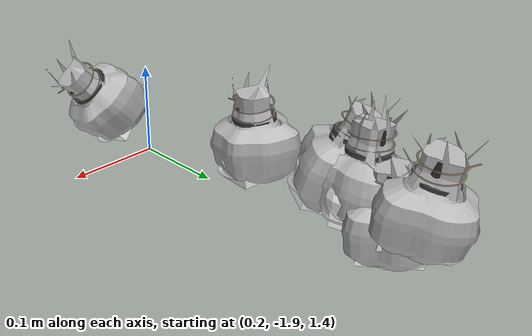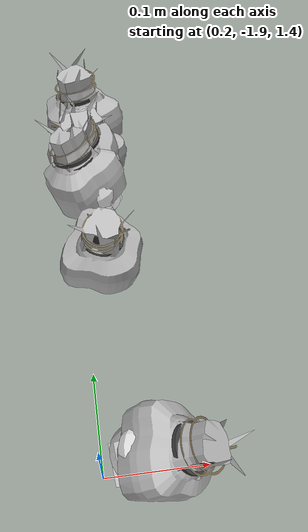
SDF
<sdf version="1.11">
 <world name="peach_orchard">
  <model name="ground">
   <static>true</static>
   <link name="link">
    <visual name="soil">
     <geometry><plane><normal>0 0 1</normal><size>32 22</size></plane></geometry>
     <material>
      <ambient>1 1 1 1</ambient>
      <diffuse>1 1 1 1</diffuse>
      <specular>0.1 0.1 0.1 1</specular>
      <pbr>
       <metal>
        <albedo_map>textures/soil_albedo.png</albedo_map>
        <normal_map type="tangent">textures/soil_normal.png</normal_map>
        <roughness>0.95</roughness>
        <metalness>0</metalness>
       </metal>
      </pbr>
     </material>
    </visual>
    <collision name="c_soil">
     <geometry><plane><normal>0 0 1</normal><size>32 22</size></plane></geometry>
    </collision>
   </link>
  </model>
  <model name="peach_tree_r2_t2_02">
   <pose>0.230029 -1.89716 1.45 0 0.746003 -0.172067</pose>
   <static>true</static>
   <link name="bag">
    <visual name="bag_mesh">
     <pose>0 0 0.0440666 0 0 -0</pose>
     <geometry>
      <mesh><uri>model://peach_sim/meshes/bagged_peach.glb</uri><scale>0.994791 1.13458 1.00151</scale></mesh>
     </geometry>
    </visual>
    <visual name="body">
     <pose>0 0 0.0260666 0 0 0</pose>
     <geometry><ellipsoid><radii>0.0373046 0.029499 0.0281519</radii></ellipsoid></geometry>
     <material>
      <ambient>1 1 1 1</ambient>
      <diffuse>1 1 1 1</diffuse>
      <specular>0.1 0.1 0.1 1</specular>
      <pbr>
       <metal>
        <albedo_map>textures/paper_bag_albedo.png</albedo_map>
        <normal_map type="tangent">textures/paper_bag_normal.png</normal_map>
        <roughness>0.72</roughness>
        <metalness>0</metalness>
       </metal>
      </pbr>
     </material>
    </visual>
    <visual name="bottom_fold">
     <pose>0 0 0.012 0 0 0.35</pose>
     <geometry><box><size>0.0578222 0.0339239 0.022</size></box></geometry>
     <material>
      <ambient>1 1 1 1</ambient>
      <diffuse>1 1 1 1</diffuse>
      <specular>0.1 0.1 0.1 1</specular>
      <pbr>
       <metal>
        <albedo_map>textures/paper_bag_albedo.png</albedo_map>
        <normal_map type="tangent">textures/paper_bag_normal.png</normal_map>
        <roughness>0.8</roughness>
        <metalness>0</metalness>
       </metal>
      </pbr>
     </material>
    </visual>
    <visual name="fruit">
     <pose>0 0 0.0180653 0 0 0</pose>
     <geometry><sphere><radius>0.025028</radius></sphere></geometry>
     <material>
      <ambient>1 1 1 1</ambient>
      <diffuse>1 1 1 1</diffuse>
      <specular>0.1 0.1 0.1 1</specular>
      <pbr>
       <metal>
        <albedo_map>textures/fruit_skin_albedo.png</albedo_map>
        <normal_map type="tangent">textures/fruit_skin_normal.png</normal_map>
        <roughness>0.55</roughness>
        <metalness>0</metalness>
       </metal>
      </pbr>
     </material>
    </visual>
    <visual name="neck">
     <pose>0 0 0.0611332 0 0 0</pose>
     <geometry><cylinder><radius>0.013</radius><length>0.018</length></cylinder></geometry>
     <material>
      <ambient>1 1 1 1</ambient>
      <diffuse>1 1 1 1</diffuse>
      <specular>0.1 0.1 0.1 1</specular>
      <pbr>
       <metal>
        <albedo_map>textures/paper_bag_albedo.png</albedo_map>
        <normal_map type="tangent">textures/paper_bag_normal.png</normal_map>
        <roughness>0.75</roughness>
        <metalness>0</metalness>
       </metal>
      </pbr>
     </material>
    </visual>
    <visual name="gather">
     <pose>0 0 0.0421332 0 0 0</pose>
     <geometry><cylinder><radius>0.019</radius><length>0.02</length></cylinder></geometry>
     <material>
      <ambient>1 1 1 1</ambient>
      <diffuse>1 1 1 1</diffuse>
      <specular>0.1 0.1 0.1 1</specular>
      <pbr>
       <metal>
        <albedo_map>textures/paper_bag_albedo.png</albedo_map>
        <normal_map type="tangent">textures/paper_bag_normal.png</normal_map>
        <roughness>0.8</roughness>
        <metalness>0</metalness>
       </metal>
      </pbr>
     </material>
    </visual>
    <visual name="inner_paper">
     <pose>0 0 0.0661332 0 0 0</pose>
     <geometry><cylinder><radius>0.01</radius><length>0.008</length></cylinder></geometry>
     <material>
      <ambient>0.180392 0.14902 0.133333 1</ambient>
      <diffuse>0.180392 0.14902 0.133333 1</diffuse>
      <specular>0.1 0.1 0.1 1</specular>
     </material>
    </visual>
    <visual name="wire_0">
     <pose>0 0 0.0561332 0 0 0</pose>
     <geometry><cylinder><radius>0.0205</radius><length>0.0035</length></cylinder></geometry>
     <material>
      <ambient>0.25 0.25 0.25 1</ambient>
      <diffuse>0.25 0.25 0.25 1</diffuse>
      <specular>0.1 0.1 0.1 1</specular>
     </material>
    </visual>
    <visual name="wire_1">
     <pose>0 0 0.0631332 0 0 0</pose>
     <geometry><cylinder><radius>0.0205</radius><length>0.0035</length></cylinder></geometry>
     <material>
      <ambient>0.25 0.25 0.25 1</ambient>
      <diffuse>0.25 0.25 0.25 1</diffuse>
      <specular>0.1 0.1 0.1 1</specular>
     </material>
    </visual>
    <visual name="wire_tail">
     <pose>0.01 0 0.0641332 0 0.521618 0</pose>
     <geometry><cylinder><radius>0.0012</radius><length>0.026</length></cylinder></geometry>
     <material>
      <ambient>0.25 0.25 0.25 1</ambient>
      <diffuse>0.25 0.25 0.25 1</diffuse>
      <specular>0.1 0.1 0.1 1</specular>
     </material>
    </visual>
    <collision name="c_body">
     <pose>0 0 0.0260666 0 0 0</pose>
     <geometry><cylinder><radius>0.0373046</radius><length>0.0521332</length></cylinder></geometry>
    </collision>
   </link>
  </model>
  <model name="peach_tree_r2_t2_03">
   <pose>0.22 -1.7069 1.45 0 0.0652033 -0.461816</pose>
   <static>true</static>
   <link name="bag">
    <visual name="bag_mesh">
     <pose>0 0 0.0422345 0 0 -0</pose>
     <geometry>
      <mesh><uri>model://peach_sim/meshes/bagged_peach.glb</uri><scale>0.979474 1.15275 0.959875</scale></mesh>
     </geometry>
    </visual>
    <visual name="body">
     <pose>0 0 0.0242345 0 0 0</pose>
     <geometry><ellipsoid><radii>0.0367303 0.0299714 0.0261732</radii></ellipsoid></geometry>
     <material>
      <ambient>1 1 1 1</ambient>
      <diffuse>1 1 1 1</diffuse>
      <specular>0.1 0.1 0.1 1</specular>
      <pbr>
       <metal>
        <albedo_map>textures/paper_bag_albedo.png</albedo_map>
        <normal_map type="tangent">textures/paper_bag_normal.png</normal_map>
        <roughness>0.72</roughness>
        <metalness>0</metalness>
       </metal>
      </pbr>
     </material>
    </visual>
    <visual name="bottom_fold">
     <pose>0 0 0.012 0 0 0.35</pose>
     <geometry><box><size>0.0569319 0.0344671 0.022</size></box></geometry>
     <material>
      <ambient>1 1 1 1</ambient>
      <diffuse>1 1 1 1</diffuse>
      <specular>0.1 0.1 0.1 1</specular>
      <pbr>
       <metal>
        <albedo_map>textures/paper_bag_albedo.png</albedo_map>
        <normal_map type="tangent">textures/paper_bag_normal.png</normal_map>
        <roughness>0.8</roughness>
        <metalness>0</metalness>
       </metal>
      </pbr>
     </material>
    </visual>
    <visual name="fruit">
     <pose>0 0 0.0181683 0 0 0</pose>
     <geometry><sphere><radius>0.0251351</radius></sphere></geometry>
     <material>
      <ambient>1 1 1 1</ambient>
      <diffuse>1 1 1 1</diffuse>
      <specular>0.1 0.1 0.1 1</specular>
      <pbr>
       <metal>
        <albedo_map>textures/fruit_skin_albedo.png</albedo_map>
        <normal_map type="tangent">textures/fruit_skin_normal.png</normal_map>
        <roughness>0.55</roughness>
        <metalness>0</metalness>
       </metal>
      </pbr>
     </material>
    </visual>
    <visual name="neck">
     <pose>0 0 0.057469 0 0 0</pose>
     <geometry><cylinder><radius>0.013</radius><length>0.018</length></cylinder></geometry>
     <material>
      <ambient>1 1 1 1</ambient>
      <diffuse>1 1 1 1</diffuse>
      <specular>0.1 0.1 0.1 1</specular>
      <pbr>
       <metal>
        <albedo_map>textures/paper_bag_albedo.png</albedo_map>
        <normal_map type="tangent">textures/paper_bag_normal.png</normal_map>
        <roughness>0.75</roughness>
        <metalness>0</metalness>
       </metal>
      </pbr>
     </material>
    </visual>
    <visual name="gather">
     <pose>0 0 0.038469 0 0 0</pose>
     <geometry><cylinder><radius>0.019</radius><length>0.02</length></cylinder></geometry>
     <material>
      <ambient>1 1 1 1</ambient>
      <diffuse>1 1 1 1</diffuse>
      <specular>0.1 0.1 0.1 1</specular>
      <pbr>
       <metal>
        <albedo_map>textures/paper_bag_albedo.png</albedo_map>
        <normal_map type="tangent">textures/paper_bag_normal.png</normal_map>
        <roughness>0.8</roughness>
        <metalness>0</metalness>
       </metal>
      </pbr>
     </material>
    </visual>
    <visual name="inner_paper">
     <pose>0 0 0.062469 0 0 0</pose>
     <geometry><cylinder><radius>0.01</radius><length>0.008</length></cylinder></geometry>
     <material>
      <ambient>0.180392 0.14902 0.133333 1</ambient>
      <diffuse>0.180392 0.14902 0.133333 1</diffuse>
      <specular>0.1 0.1 0.1 1</specular>
     </material>
    </visual>
    <visual name="wire_0">
     <pose>0 0 0.052469 0 0 0</pose>
     <geometry><cylinder><radius>0.0205</radius><length>0.0035</length></cylinder></geometry>
     <material>
      <ambient>0.25 0.25 0.25 1</ambient>
      <diffuse>0.25 0.25 0.25 1</diffuse>
      <specular>0.1 0.1 0.1 1</specular>
     </material>
    </visual>
    <visual name="wire_1">
     <pose>0 0 0.059469 0 0 0</pose>
     <geometry><cylinder><radius>0.0205</radius><length>0.0035</length></cylinder></geometry>
     <material>
      <ambient>0.25 0.25 0.25 1</ambient>
      <diffuse>0.25 0.25 0.25 1</diffuse>
      <specular>0.1 0.1 0.1 1</specular>
     </material>
    </visual>
    <visual name="wire_tail">
     <pose>0.01 0 0.060469 0 0.521618 0</pose>
     <geometry><cylinder><radius>0.0012</radius><length>0.026</length></cylinder></geometry>
     <material>
      <ambient>0.25 0.25 0.25 1</ambient>
      <diffuse>0.25 0.25 0.25 1</diffuse>
      <specular>0.1 0.1 0.1 1</specular>
     </material>
    </visual>
    <collision name="c_body">
     <pose>0 0 0.0242345 0 0 0</pose>
     <geometry><cylinder><radius>0.0367303</radius><length>0.048469</length></cylinder></geometry>
    </collision>
   </link>
  </model>
  <model name="peach_tree_r2_t2_04">
   <pose>0.22 -1.58603 1.45 0 0.116318 3.05768</pose>
   <static>true</static>
   <link name="bag">
    <visual name="bag_mesh">
     <pose>0 0 0.0452178 0 0 0</pose>
     <geometry>
      <mesh><uri>model://peach_sim/meshes/bagged_peach.glb</uri><scale>0.984778 1.08162 1.02768</scale></mesh>
     </geometry>
    </visual>
    <visual name="body">
     <pose>0 0 0.0272178 0 0 0</pose>
     <geometry><ellipsoid><radii>0.0369292 0.0281221 0.0293952</radii></ellipsoid></geometry>
     <material>
      <ambient>1 1 1 1</ambient>
      <diffuse>1 1 1 1</diffuse>
      <specular>0.1 0.1 0.1 1</specular>
      <pbr>
       <metal>
        <albedo_map>textures/paper_bag_albedo.png</albedo_map>
        <normal_map type="tangent">textures/paper_bag_normal.png</normal_map>
        <roughness>0.72</roughness>
        <metalness>0</metalness>
       </metal>
      </pbr>
     </material>
    </visual>
    <visual name="bottom_fold">
     <pose>0 0 0.012 0 0 0.35</pose>
     <geometry><box><size>0.0572402 0.0323404 0.022</size></box></geometry>
     <material>
      <ambient>1 1 1 1</ambient>
      <diffuse>1 1 1 1</diffuse>
      <specular>0.1 0.1 0.1 1</specular>
      <pbr>
       <metal>
        <albedo_map>textures/paper_bag_albedo.png</albedo_map>
        <normal_map type="tangent">textures/paper_bag_normal.png</normal_map>
        <roughness>0.8</roughness>
        <metalness>0</metalness>
       </metal>
      </pbr>
     </material>
    </visual>
    <visual name="fruit">
     <pose>0 0 0.0196205 0 0 0</pose>
     <geometry><sphere><radius>0.0266454</radius></sphere></geometry>
     <material>
      <ambient>1 1 1 1</ambient>
      <diffuse>1 1 1 1</diffuse>
      <specular>0.1 0.1 0.1 1</specular>
      <pbr>
       <metal>
        <albedo_map>textures/fruit_skin_albedo.png</albedo_map>
        <normal_map type="tangent">textures/fruit_skin_normal.png</normal_map>
        <roughness>0.55</roughness>
        <metalness>0</metalness>
       </metal>
      </pbr>
     </material>
    </visual>
    <visual name="neck">
     <pose>0 0 0.0634356 0 0 0</pose>
     <geometry><cylinder><radius>0.013</radius><length>0.018</length></cylinder></geometry>
     <material>
      <ambient>1 1 1 1</ambient>
      <diffuse>1 1 1 1</diffuse>
      <specular>0.1 0.1 0.1 1</specular>
      <pbr>
       <metal>
        <albedo_map>textures/paper_bag_albedo.png</albedo_map>
        <normal_map type="tangent">textures/paper_bag_normal.png</normal_map>
        <roughness>0.75</roughness>
        <metalness>0</metalness>
       </metal>
      </pbr>
     </material>
    </visual>
    <visual name="gather">
     <pose>0 0 0.0444356 0 0 0</pose>
     <geometry><cylinder><radius>0.019</radius><length>0.02</length></cylinder></geometry>
     <material>
      <ambient>1 1 1 1</ambient>
      <diffuse>1 1 1 1</diffuse>
      <specular>0.1 0.1 0.1 1</specular>
      <pbr>
       <metal>
        <albedo_map>textures/paper_bag_albedo.png</albedo_map>
        <normal_map type="tangent">textures/paper_bag_normal.png</normal_map>
        <roughness>0.8</roughness>
        <metalness>0</metalness>
       </metal>
      </pbr>
     </material>
    </visual>
    <visual name="inner_paper">
     <pose>0 0 0.0684356 0 0 0</pose>
     <geometry><cylinder><radius>0.01</radius><length>0.008</length></cylinder></geometry>
     <material>
      <ambient>0.180392 0.14902 0.133333 1</ambient>
      <diffuse>0.180392 0.14902 0.133333 1</diffuse>
      <specular>0.1 0.1 0.1 1</specular>
     </material>
    </visual>
    <visual name="wire_0">
     <pose>0 0 0.0584356 0 0 0</pose>
     <geometry><cylinder><radius>0.0205</radius><length>0.0035</length></cylinder></geometry>
     <material>
      <ambient>0.25 0.25 0.25 1</ambient>
      <diffuse>0.25 0.25 0.25 1</diffuse>
      <specular>0.1 0.1 0.1 1</specular>
     </material>
    </visual>
    <visual name="wire_1">
     <pose>0 0 0.0654356 0 0 0</pose>
     <geometry><cylinder><radius>0.0205</radius><length>0.0035</length></cylinder></geometry>
     <material>
      <ambient>0.25 0.25 0.25 1</ambient>
      <diffuse>0.25 0.25 0.25 1</diffuse>
      <specular>0.1 0.1 0.1 1</specular>
     </material>
    </visual>
    <visual name="wire_tail">
     <pose>0.01 0 0.0664356 0 0.521618 0</pose>
     <geometry><cylinder><radius>0.0012</radius><length>0.026</length></cylinder></geometry>
     <material>
      <ambient>0.25 0.25 0.25 1</ambient>
      <diffuse>0.25 0.25 0.25 1</diffuse>
      <specular>0.1 0.1 0.1 1</specular>
     </material>
    </visual>
    <collision name="c_body">
     <pose>0 0 0.0272178 0 0 0</pose>
     <geometry><cylinder><radius>0.0369292</radius><length>0.0544356</length></cylinder></geometry>
    </collision>
   </link>
  </model>
  <model name="peach_tree_r2_t2_05">
   <pose>0.22 -1.53137 1.45 0 0.211553 1.95926</pose>
   <static>true</static>
   <link name="bag">
    <visual name="bag_mesh">
     <pose>0 0 0.0457398 0 0 0</pose>
     <geometry>
      <mesh><uri>model://peach_sim/meshes/bagged_peach.glb</uri><scale>1.0757 1.18416 1.03954</scale></mesh>
     </geometry>
    </visual>
    <visual name="body">
     <pose>0 0 0.0277398 0 0 0</pose>
     <geometry><ellipsoid><radii>0.0403387 0.0307882 0.029959</radii></ellipsoid></geometry>
     <material>
      <ambient>1 1 1 1</ambient>
      <diffuse>1 1 1 1</diffuse>
      <specular>0.1 0.1 0.1 1</specular>
      <pbr>
       <metal>
        <albedo_map>textures/paper_bag_albedo.png</albedo_map>
        <normal_map type="tangent">textures/paper_bag_normal.png</normal_map>
        <roughness>0.72</roughness>
        <metalness>0</metalness>
       </metal>
      </pbr>
     </material>
    </visual>
    <visual name="bottom_fold">
     <pose>0 0 0.012 0 0 0.35</pose>
     <geometry><box><size>0.0625249 0.0354064 0.022</size></box></geometry>
     <material>
      <ambient>1 1 1 1</ambient>
      <diffuse>1 1 1 1</diffuse>
      <specular>0.1 0.1 0.1 1</specular>
      <pbr>
       <metal>
        <albedo_map>textures/paper_bag_albedo.png</albedo_map>
        <normal_map type="tangent">textures/paper_bag_normal.png</normal_map>
        <roughness>0.8</roughness>
        <metalness>0</metalness>
       </metal>
      </pbr>
     </material>
    </visual>
    <visual name="fruit">
     <pose>0 0 0.0207703 0 0 0</pose>
     <geometry><sphere><radius>0.0278411</radius></sphere></geometry>
     <material>
      <ambient>1 1 1 1</ambient>
      <diffuse>1 1 1 1</diffuse>
      <specular>0.1 0.1 0.1 1</specular>
      <pbr>
       <metal>
        <albedo_map>textures/fruit_skin_albedo.png</albedo_map>
        <normal_map type="tangent">textures/fruit_skin_normal.png</normal_map>
        <roughness>0.55</roughness>
        <metalness>0</metalness>
       </metal>
      </pbr>
     </material>
    </visual>
    <visual name="neck">
     <pose>0 0 0.0644797 0 0 0</pose>
     <geometry><cylinder><radius>0.013</radius><length>0.018</length></cylinder></geometry>
     <material>
      <ambient>1 1 1 1</ambient>
      <diffuse>1 1 1 1</diffuse>
      <specular>0.1 0.1 0.1 1</specular>
      <pbr>
       <metal>
        <albedo_map>textures/paper_bag_albedo.png</albedo_map>
        <normal_map type="tangent">textures/paper_bag_normal.png</normal_map>
        <roughness>0.75</roughness>
        <metalness>0</metalness>
       </metal>
      </pbr>
     </material>
    </visual>
    <visual name="gather">
     <pose>0 0 0.0454797 0 0 0</pose>
     <geometry><cylinder><radius>0.019</radius><length>0.02</length></cylinder></geometry>
     <material>
      <ambient>1 1 1 1</ambient>
      <diffuse>1 1 1 1</diffuse>
      <specular>0.1 0.1 0.1 1</specular>
      <pbr>
       <metal>
        <albedo_map>textures/paper_bag_albedo.png</albedo_map>
        <normal_map type="tangent">textures/paper_bag_normal.png</normal_map>
        <roughness>0.8</roughness>
        <metalness>0</metalness>
       </metal>
      </pbr>
     </material>
    </visual>
    <visual name="inner_paper">
     <pose>0 0 0.0694797 0 0 0</pose>
     <geometry><cylinder><radius>0.01</radius><length>0.008</length></cylinder></geometry>
     <material>
      <ambient>0.180392 0.14902 0.133333 1</ambient>
      <diffuse>0.180392 0.14902 0.133333 1</diffuse>
      <specular>0.1 0.1 0.1 1</specular>
     </material>
    </visual>
    <visual name="wire_0">
     <pose>0 0 0.0594797 0 0 0</pose>
     <geometry><cylinder><radius>0.0205</radius><length>0.0035</length></cylinder></geometry>
     <material>
      <ambient>0.25 0.25 0.25 1</ambient>
      <diffuse>0.25 0.25 0.25 1</diffuse>
      <specular>0.1 0.1 0.1 1</specular>
     </material>
    </visual>
    <visual name="wire_1">
     <pose>0 0 0.0664797 0 0 0</pose>
     <geometry><cylinder><radius>0.0205</radius><length>0.0035</length></cylinder></geometry>
     <material>
      <ambient>0.25 0.25 0.25 1</ambient>
      <diffuse>0.25 0.25 0.25 1</diffuse>
      <specular>0.1 0.1 0.1 1</specular>
     </material>
    </visual>
    <visual name="wire_tail">
     <pose>0.01 0 0.0674797 0 0.521618 0</pose>
     <geometry><cylinder><radius>0.0012</radius><length>0.026</length></cylinder></geometry>
     <material>
      <ambient>0.25 0.25 0.25 1</ambient>
      <diffuse>0.25 0.25 0.25 1</diffuse>
      <specular>0.1 0.1 0.1 1</specular>
     </material>
    </visual>
    <collision name="c_body">
     <pose>0 0 0.0277398 0 0 0</pose>
     <geometry><cylinder><radius>0.0403387</radius><length>0.0554797</length></cylinder></geometry>
    </collision>
   </link>
  </model>
  <model name="peach_tree_r2_t2_06">
   <pose>0.22 -1.62711 1.45 0 0.359032 2.29016</pose>
   <static>true</static>
   <link name="bag">
    <visual name="bag_mesh">
     <pose>0 0 0.0483299 0 0 0</pose>
     <geometry>
      <mesh><uri>model://peach_sim/meshes/bagged_peach.glb</uri><scale>0.974993 1.11338 1.09841</scale></mesh>
     </geometry>
    </visual>
    <visual name="body">
     <pose>0 0 0.0303299 0 0 0</pose>
     <geometry><ellipsoid><radii>0.0365622 0.0289479 0.0327563</radii></ellipsoid></geometry>
     <material>
      <ambient>1 1 1 1</ambient>
      <diffuse>1 1 1 1</diffuse>
      <specular>0.1 0.1 0.1 1</specular>
      <pbr>
       <metal>
        <albedo_map>textures/paper_bag_albedo.png</albedo_map>
        <normal_map type="tangent">textures/paper_bag_normal.png</normal_map>
        <roughness>0.72</roughness>
        <metalness>0</metalness>
       </metal>
      </pbr>
     </material>
    </visual>
    <visual name="bottom_fold">
     <pose>0 0 0.012 0 0 0.35</pose>
     <geometry><box><size>0.0566715 0.0332901 0.022</size></box></geometry>
     <material>
      <ambient>1 1 1 1</ambient>
      <diffuse>1 1 1 1</diffuse>
      <specular>0.1 0.1 0.1 1</specular>
      <pbr>
       <metal>
        <albedo_map>textures/paper_bag_albedo.png</albedo_map>
        <normal_map type="tangent">textures/paper_bag_normal.png</normal_map>
        <roughness>0.8</roughness>
        <metalness>0</metalness>
       </metal>
      </pbr>
     </material>
    </visual>
    <visual name="fruit">
     <pose>0 0 0.0208351 0 0 0</pose>
     <geometry><sphere><radius>0.0279085</radius></sphere></geometry>
     <material>
      <ambient>1 1 1 1</ambient>
      <diffuse>1 1 1 1</diffuse>
      <specular>0.1 0.1 0.1 1</specular>
      <pbr>
       <metal>
        <albedo_map>textures/fruit_skin_albedo.png</albedo_map>
        <normal_map type="tangent">textures/fruit_skin_normal.png</normal_map>
        <roughness>0.55</roughness>
        <metalness>0</metalness>
       </metal>
      </pbr>
     </material>
    </visual>
    <visual name="neck">
     <pose>0 0 0.0696598 0 0 0</pose>
     <geometry><cylinder><radius>0.013</radius><length>0.018</length></cylinder></geometry>
     <material>
      <ambient>1 1 1 1</ambient>
      <diffuse>1 1 1 1</diffuse>
      <specular>0.1 0.1 0.1 1</specular>
      <pbr>
       <metal>
        <albedo_map>textures/paper_bag_albedo.png</albedo_map>
        <normal_map type="tangent">textures/paper_bag_normal.png</normal_map>
        <roughness>0.75</roughness>
        <metalness>0</metalness>
       </metal>
      </pbr>
     </material>
    </visual>
    <visual name="gather">
     <pose>0 0 0.0506598 0 0 0</pose>
     <geometry><cylinder><radius>0.019</radius><length>0.02</length></cylinder></geometry>
     <material>
      <ambient>1 1 1 1</ambient>
      <diffuse>1 1 1 1</diffuse>
      <specular>0.1 0.1 0.1 1</specular>
      <pbr>
       <metal>
        <albedo_map>textures/paper_bag_albedo.png</albedo_map>
        <normal_map type="tangent">textures/paper_bag_normal.png</normal_map>
        <roughness>0.8</roughness>
        <metalness>0</metalness>
       </metal>
      </pbr>
     </material>
    </visual>
    <visual name="inner_paper">
     <pose>0 0 0.0746598 0 0 0</pose>
     <geometry><cylinder><radius>0.01</radius><length>0.008</length></cylinder></geometry>
     <material>
      <ambient>0.180392 0.14902 0.133333 1</ambient>
      <diffuse>0.180392 0.14902 0.133333 1</diffuse>
      <specular>0.1 0.1 0.1 1</specular>
     </material>
    </visual>
    <visual name="wire_0">
     <pose>0 0 0.0646598 0 0 0</pose>
     <geometry><cylinder><radius>0.0205</radius><length>0.0035</length></cylinder></geometry>
     <material>
      <ambient>0.25 0.25 0.25 1</ambient>
      <diffuse>0.25 0.25 0.25 1</diffuse>
      <specular>0.1 0.1 0.1 1</specular>
     </material>
    </visual>
    <visual name="wire_1">
     <pose>0 0 0.0716598 0 0 0</pose>
     <geometry><cylinder><radius>0.0205</radius><length>0.0035</length></cylinder></geometry>
     <material>
      <ambient>0.25 0.25 0.25 1</ambient>
      <diffuse>0.25 0.25 0.25 1</diffuse>
      <specular>0.1 0.1 0.1 1</specular>
     </material>
    </visual>
    <visual name="wire_tail">
     <pose>0.01 0 0.0726598 0 0.521618 0</pose>
     <geometry><cylinder><radius>0.0012</radius><length>0.026</length></cylinder></geometry>
     <material>
      <ambient>0.25 0.25 0.25 1</ambient>
      <diffuse>0.25 0.25 0.25 1</diffuse>
      <specular>0.1 0.1 0.1 1</specular>
     </material>
    </visual>
    <collision name="c_body">
     <pose>0 0 0.0303299 0 0 0</pose>
     <geometry><cylinder><radius>0.0365622</radius><length>0.0606598</length></cylinder></geometry>
    </collision>
   </link>
  </model>
  <model name="peach_tree_r2_t2_07">
   <pose>0.22 -1.55237 1.42887 0 0.000320054 1.91419</pose>
   <static>true</static>
   <link name="bag">
    <visual name="bag_mesh">
     <pose>0 0 0.0429906 0 0 0</pose>
     <geometry>
      <mesh><uri>model://peach_sim/meshes/bagged_peach.glb</uri><scale>0.990897 1.15047 0.977059</scale></mesh>
     </geometry>
    </visual>
    <visual name="body">
     <pose>0 0 0.0249906 0 0 0</pose>
     <geometry><ellipsoid><radii>0.0371587 0.0299123 0.0269898</radii></ellipsoid></geometry>
     <material>
      <ambient>1 1 1 1</ambient>
      <diffuse>1 1 1 1</diffuse>
      <specular>0.1 0.1 0.1 1</specular>
      <pbr>
       <metal>
        <albedo_map>textures/paper_bag_albedo.png</albedo_map>
        <normal_map type="tangent">textures/paper_bag_normal.png</normal_map>
        <roughness>0.72</roughness>
        <metalness>0</metalness>
       </metal>
      </pbr>
     </material>
    </visual>
    <visual name="bottom_fold">
     <pose>0 0 0.012 0 0 0.35</pose>
     <geometry><box><size>0.0575959 0.0343992 0.022</size></box></geometry>
     <material>
      <ambient>1 1 1 1</ambient>
      <diffuse>1 1 1 1</diffuse>
      <specular>0.1 0.1 0.1 1</specular>
      <pbr>
       <metal>
        <albedo_map>textures/paper_bag_albedo.png</albedo_map>
        <normal_map type="tangent">textures/paper_bag_normal.png</normal_map>
        <roughness>0.8</roughness>
        <metalness>0</metalness>
       </metal>
      </pbr>
     </material>
    </visual>
    <visual name="fruit">
     <pose>0 0 0.0211114 0 0 0</pose>
     <geometry><sphere><radius>0.0281958</radius></sphere></geometry>
     <material>
      <ambient>1 1 1 1</ambient>
      <diffuse>1 1 1 1</diffuse>
      <specular>0.1 0.1 0.1 1</specular>
      <pbr>
       <metal>
        <albedo_map>textures/fruit_skin_albedo.png</albedo_map>
        <normal_map type="tangent">textures/fruit_skin_normal.png</normal_map>
        <roughness>0.55</roughness>
        <metalness>0</metalness>
       </metal>
      </pbr>
     </material>
    </visual>
    <visual name="neck">
     <pose>0 0 0.0589812 0 0 0</pose>
     <geometry><cylinder><radius>0.013</radius><length>0.018</length></cylinder></geometry>
     <material>
      <ambient>1 1 1 1</ambient>
      <diffuse>1 1 1 1</diffuse>
      <specular>0.1 0.1 0.1 1</specular>
      <pbr>
       <metal>
        <albedo_map>textures/paper_bag_albedo.png</albedo_map>
        <normal_map type="tangent">textures/paper_bag_normal.png</normal_map>
        <roughness>0.75</roughness>
        <metalness>0</metalness>
       </metal>
      </pbr>
     </material>
    </visual>
    <visual name="gather">
     <pose>0 0 0.0399812 0 0 0</pose>
     <geometry><cylinder><radius>0.019</radius><length>0.02</length></cylinder></geometry>
     <material>
      <ambient>1 1 1 1</ambient>
      <diffuse>1 1 1 1</diffuse>
      <specular>0.1 0.1 0.1 1</specular>
      <pbr>
       <metal>
        <albedo_map>textures/paper_bag_albedo.png</albedo_map>
        <normal_map type="tangent">textures/paper_bag_normal.png</normal_map>
        <roughness>0.8</roughness>
        <metalness>0</metalness>
       </metal>
      </pbr>
     </material>
    </visual>
    <visual name="inner_paper">
     <pose>0 0 0.0639812 0 0 0</pose>
     <geometry><cylinder><radius>0.01</radius><length>0.008</length></cylinder></geometry>
     <material>
      <ambient>0.180392 0.14902 0.133333 1</ambient>
      <diffuse>0.180392 0.14902 0.133333 1</diffuse>
      <specular>0.1 0.1 0.1 1</specular>
     </material>
    </visual>
    <visual name="wire_0">
     <pose>0 0 0.0539812 0 0 0</pose>
     <geometry><cylinder><radius>0.0205</radius><length>0.0035</length></cylinder></geometry>
     <material>
      <ambient>0.25 0.25 0.25 1</ambient>
      <diffuse>0.25 0.25 0.25 1</diffuse>
      <specular>0.1 0.1 0.1 1</specular>
     </material>
    </visual>
    <visual name="wire_1">
     <pose>0 0 0.0609812 0 0 0</pose>
     <geometry><cylinder><radius>0.0205</radius><length>0.0035</length></cylinder></geometry>
     <material>
      <ambient>0.25 0.25 0.25 1</ambient>
      <diffuse>0.25 0.25 0.25 1</diffuse>
      <specular>0.1 0.1 0.1 1</specular>
     </material>
    </visual>
    <visual name="wire_tail">
     <pose>0.01 0 0.0619812 0 0.521618 0</pose>
     <geometry><cylinder><radius>0.0012</radius><length>0.026</length></cylinder></geometry>
     <material>
      <ambient>0.25 0.25 0.25 1</ambient>
      <diffuse>0.25 0.25 0.25 1</diffuse>
      <specular>0.1 0.1 0.1 1</specular>
     </material>
    </visual>
    <collision name="c_body">
     <pose>0 0 0.0249906 0 0 0</pose>
     <geometry><cylinder><radius>0.0371587</radius><length>0.0499812</length></cylinder></geometry>
    </collision>
   </link>
  </model>
 </world>
</sdf>
